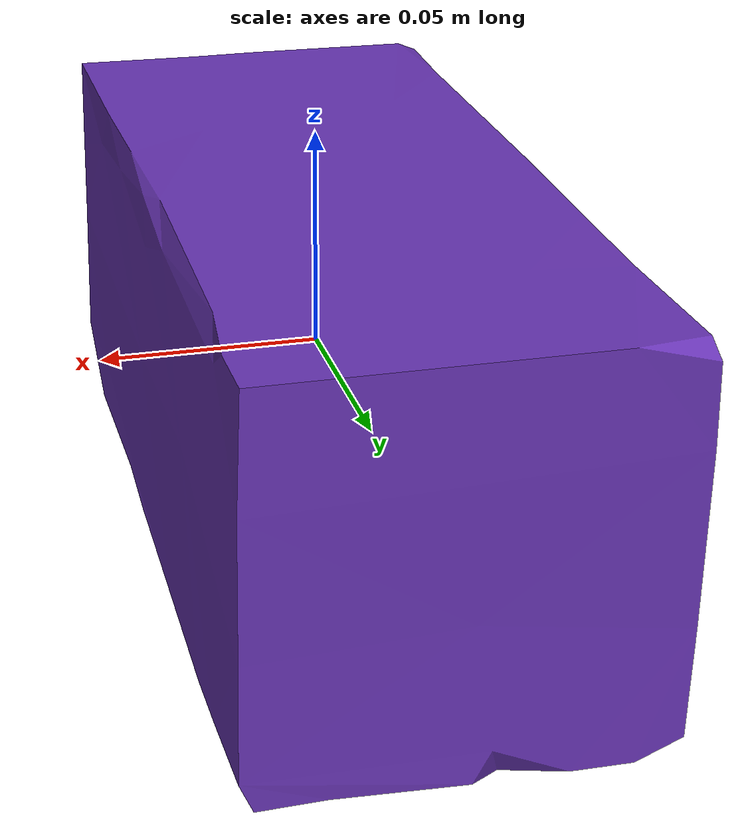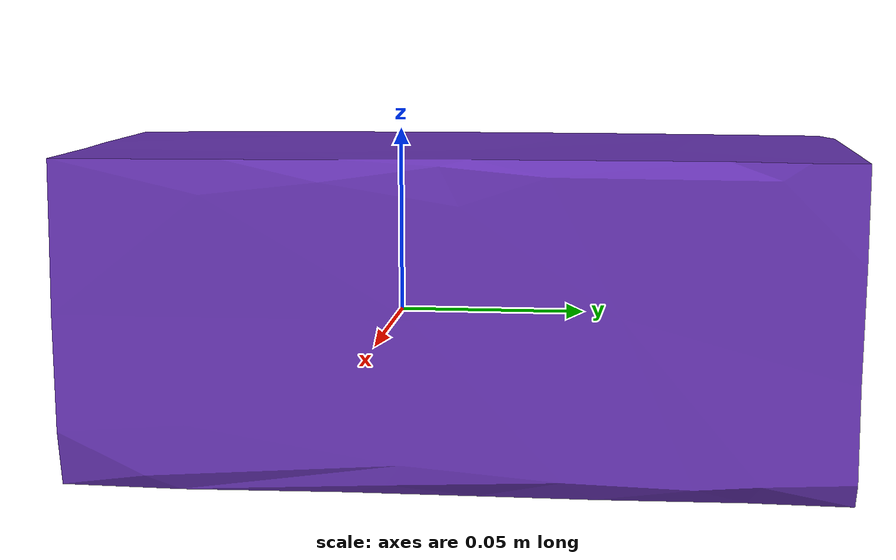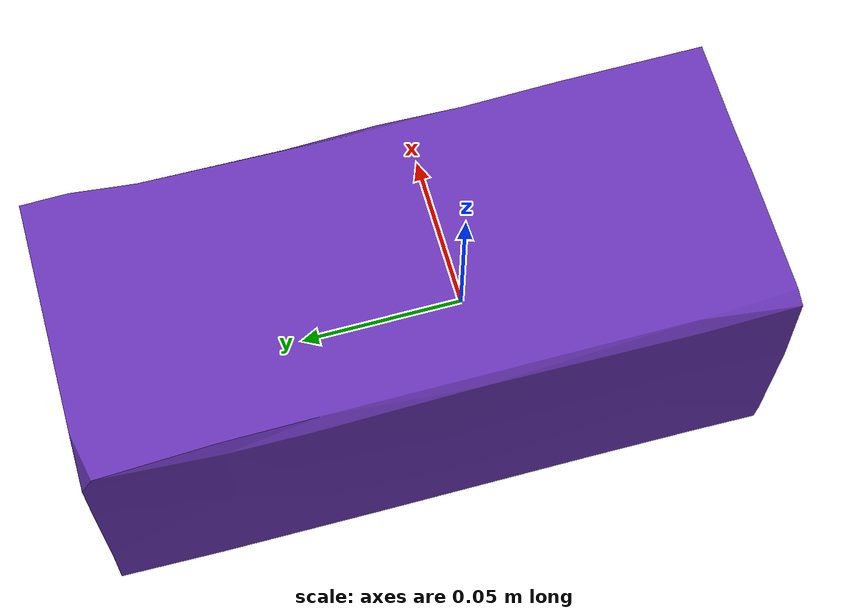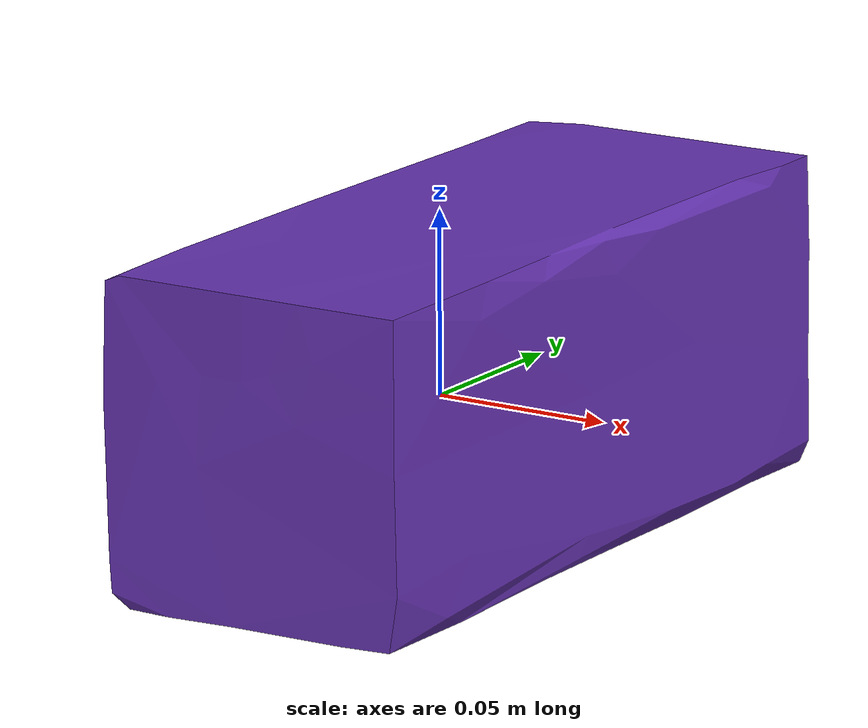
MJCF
<mujoco model="top_watertight_tiny">

  <asset>
    <mesh file="top_watertight_tiny.obj"/>
    <mesh file="top_watertight_tiny_collision_0.obj"/>
  </asset>
  <worldbody>
    <body name="top_watertight_tiny">
      <freejoint/>
      <geom solimp="0.90 0.95 0.001" solref="0.02 1.0" density="100" friction="0.95 0.4 0.3" rgba="0.4 0.2 0.7 1" mesh="top_watertight_tiny" group="2" type="mesh" contype="0" conaffinity="0"/>
      <geom solimp="0.90 0.95 0.001" solref="0.02 1.0" density="100" friction="0.95 0.4 0.3" mesh="top_watertight_tiny_collision_0" rgba="0.6553115796775217 0.7236779885752843 0.378133896826218 1" group="3" type="mesh"/>
    </body>
  </worldbody>
</mujoco>
